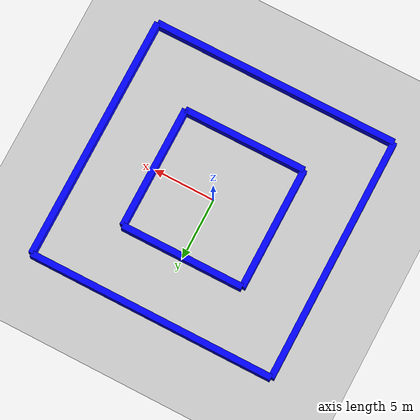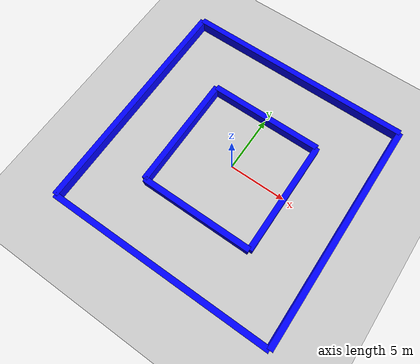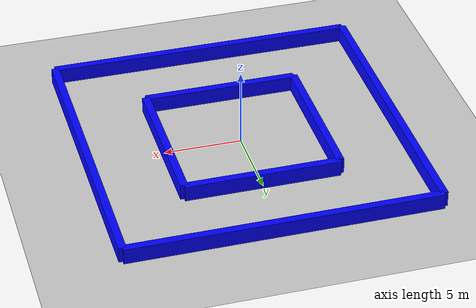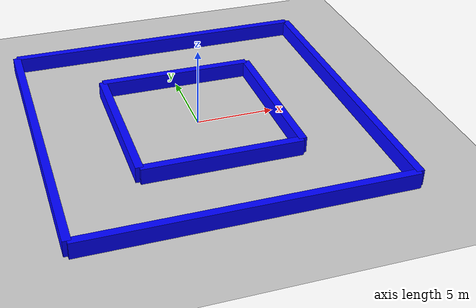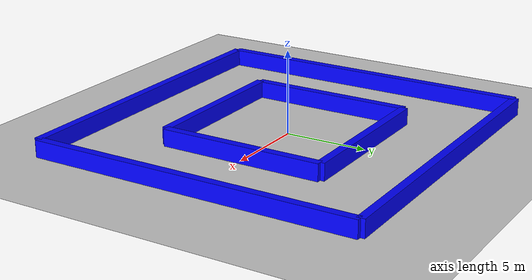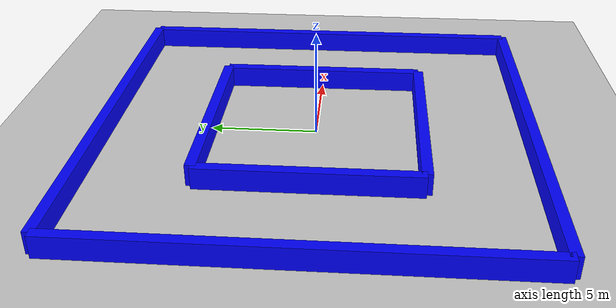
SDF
<?xml version="1.0"?>
<sdf version="1.8">
  <world name="vk">

    <physics name="1ms" type="ignored">
      <max_step_size>0.001</max_step_size>
      <real_time_factor>1.0</real_time_factor>
    </physics>

    <plugin
      filename="gz-sim-physics-system"
      name="gz::sim::systems::Physics">
    </plugin>
    <plugin
      filename="gz-sim-sensors-system"
      name="gz::sim::systems::Sensors">
      <render_engine>ogre2</render_engine>
    </plugin>
    <plugin
      filename="gz-sim-scene-broadcaster-system"
      name="gz::sim::systems::SceneBroadcaster">
    </plugin>
    <plugin
      filename="gz-sim-user-commands-system"
      name="gz::sim::systems::UserCommands">
    </plugin>

    <plugin
      filename="gz-sim-contact-system"
      name="gz::sim::systems::Contact">
    </plugin>

    <light type="directional" name="sun">
      <cast_shadows>true</cast_shadows>
      <pose>0 0 10 0 0 0</pose>
      <diffuse>1 1 1 1</diffuse>
      <specular>0.5 0.5 0.5 1</specular>
      <attenuation>
        <range>1000</range>
        <constant>0.9</constant>
        <linear>0.01</linear>
        <quadratic>0.001</quadratic>
      </attenuation>
      <direction>-0.5 0.1 -0.9</direction>
    </light>

    <model name="ground_plane">
      <static>true</static>
      <link name="link">
        <collision name="collision">
          <geometry>
            <plane>
              <normal>0 0 1</normal>
              <size>100 100</size>
            </plane>
          </geometry>
          <surface>
            <friction>
              <ode>
                <mu>50</mu>
              </ode>
            </friction>
          </surface>
        </collision>
        <visual name="visual">
          <geometry>
            <plane>
              <normal>0 0 1</normal>
              <size>100 100</size>
            </plane>
          </geometry>
          <material>
            <ambient>0.8 0.8 0.8 1</ambient>
            <diffuse>0.8 0.8 0.8 1</diffuse>
            <specular>0.8 0.8 0.8 1</specular>
          </material>
        </visual>
      </link>
    </model>

    <model name='wall_f'>
      <static>true</static>
      <pose>5 0 0 0 0 0</pose><!--pose
      relative to the world-->
      <link name='box'>
        <visual name='visual'>
          <geometry>
            <box>
              <size>0.5 10.0 2.0</size>
            </box>
          </geometry>
          <!--let's
          add color to our link-->
          <material>
            <ambient>0.0 0.0 1.0 1</ambient>
            <diffuse>0.0 0.0 1.0 1</diffuse>
            <specular>0.0 0.0 1.0 1</specular>
          </material>
        </visual>
        <collision name='collision'>
          <geometry>
            <box>
              <size>0.5 10.0 2.0</size>
            </box>
          </geometry>
        </collision>
      </link>
    </model>

    <model name='wall_f_2'>
      <static>true</static>
      <pose>10 0 0 0 0 0</pose><!--pose
      relative to the world-->
      <link name='box'>
        <visual name='visual'>
          <geometry>
            <box>
              <size>0.5 20.0 2.0</size>
            </box>
          </geometry>
          <!--let's
          add color to our link-->
          <material>
            <ambient>0.0 0.0 1.0 1</ambient>
            <diffuse>0.0 0.0 1.0 1</diffuse>
            <specular>0.0 0.0 1.0 1</specular>
          </material>
        </visual>
        <collision name='collision'>
          <geometry>
            <box>
              <size>0.5 10.0 2.0</size>
            </box>
          </geometry>
        </collision>
      </link>
    </model>

    <model name='wall_b'>
      <static>true</static>
      <pose>-5 0 0 0 0 0</pose><!--pose
      relative to the world-->
      <link name='box'>
        <visual name='visual'>
          <geometry>
            <box>
              <size>0.5 10.0 2.0</size>
            </box>
          </geometry>
          <!--let's
          add color to our link-->
          <material>
            <ambient>0.0 0.0 1.0 1</ambient>
            <diffuse>0.0 0.0 1.0 1</diffuse>
            <specular>0.0 0.0 1.0 1</specular>
          </material>
        </visual>
        <collision name='collision'>
          <geometry>
            <box>
              <size>0.5 10.0 2.0</size>
            </box>
          </geometry>
        </collision>
      </link>
    </model>

    <model name='wall_b_2'>
      <static>true</static>
      <pose>-10 0 0 0 0 0</pose><!--pose
      relative to the world-->
      <link name='box'>
        <visual name='visual'>
          <geometry>
            <box>
              <size>0.5 20.0 2.0</size>
            </box>
          </geometry>
          <!--let's
          add color to our link-->
          <material>
            <ambient>0.0 0.0 1.0 1</ambient>
            <diffuse>0.0 0.0 1.0 1</diffuse>
            <specular>0.0 0.0 1.0 1</specular>
          </material>
        </visual>
        <collision name='collision'>
          <geometry>
            <box>
              <size>0.5 10.0 2.0</size>
            </box>
          </geometry>
        </collision>
      </link>
    </model>

    <model name='wall_c'>
      <static>true</static>
      <pose>0 5 0 0 0 1.5708</pose><!--pose
      relative to the world-->
      <link name='box'>
        <visual name='visual'>
          <geometry>
            <box>
              <size>0.5 10.0 2.0</size>
            </box>
          </geometry>
          <!--let's
          add color to our link-->
          <material>
            <ambient>0.0 0.0 1.0 1</ambient>
            <diffuse>0.0 0.0 1.0 1</diffuse>
            <specular>0.0 0.0 1.0 1</specular>
          </material>
        </visual>
        <collision name='collision'>
          <geometry>
            <box>
              <size>0.5 10.0 2.0</size>
            </box>
          </geometry>
        </collision>
      </link>
    </model>

    <model name='wall_c_2'>
      <static>true</static>
      <pose>0 10 0 0 0 1.5708</pose><!--pose
      relative to the world-->
      <link name='box'>
        <visual name='visual'>
          <geometry>
            <box>
              <size>0.5 20.0 2.0</size>
            </box>
          </geometry>
          <!--let's
          add color to our link-->
          <material>
            <ambient>0.0 0.0 1.0 1</ambient>
            <diffuse>0.0 0.0 1.0 1</diffuse>
            <specular>0.0 0.0 1.0 1</specular>
          </material>
        </visual>
        <collision name='collision'>
          <geometry>
            <box>
              <size>0.5 10.0 2.0</size>
            </box>
          </geometry>
        </collision>
      </link>
    </model>

    <model name='wall_d'>
      <static>true</static>
      <pose>0 -5 0 0 0 1.5708</pose><!--pose
      relative to the world-->
      <link name='box'>
        <visual name='visual'>
          <geometry>
            <box>
              <size>0.5 10.0 2.0</size>
            </box>
          </geometry>
          <!--let's
          add color to our link-->
          <material>
            <ambient>0.0 0.0 1.0 1</ambient>
            <diffuse>0.0 0.0 1.0 1</diffuse>
            <specular>0.0 0.0 1.0 1</specular>
          </material>
        </visual>
        <collision name='collision'>
          <geometry>
            <box>
              <size>0.5 10.0 2.0</size>
            </box>
          </geometry>
        </collision>
      </link>
    </model>

    <model name='wall_d_2'>
      <static>true</static>
      <pose>0 -10 0 0 0 1.5708</pose><!--pose
      relative to the world-->
      <link name='box'>
        <visual name='visual'>
          <geometry>
            <box>
              <size>0.5 20.0 2.0</size>
            </box>
          </geometry>
          <!--let's
          add color to our link-->
          <material>
            <ambient>0.0 0.0 1.0 1</ambient>
            <diffuse>0.0 0.0 1.0 1</diffuse>
            <specular>0.0 0.0 1.0 1</specular>
          </material>
        </visual>
        <collision name='collision'>
          <geometry>
            <box>
              <size>0.5 10.0 2.0</size>
            </box>
          </geometry>
        </collision>
      </link>
    </model>

  </world>

</sdf>
